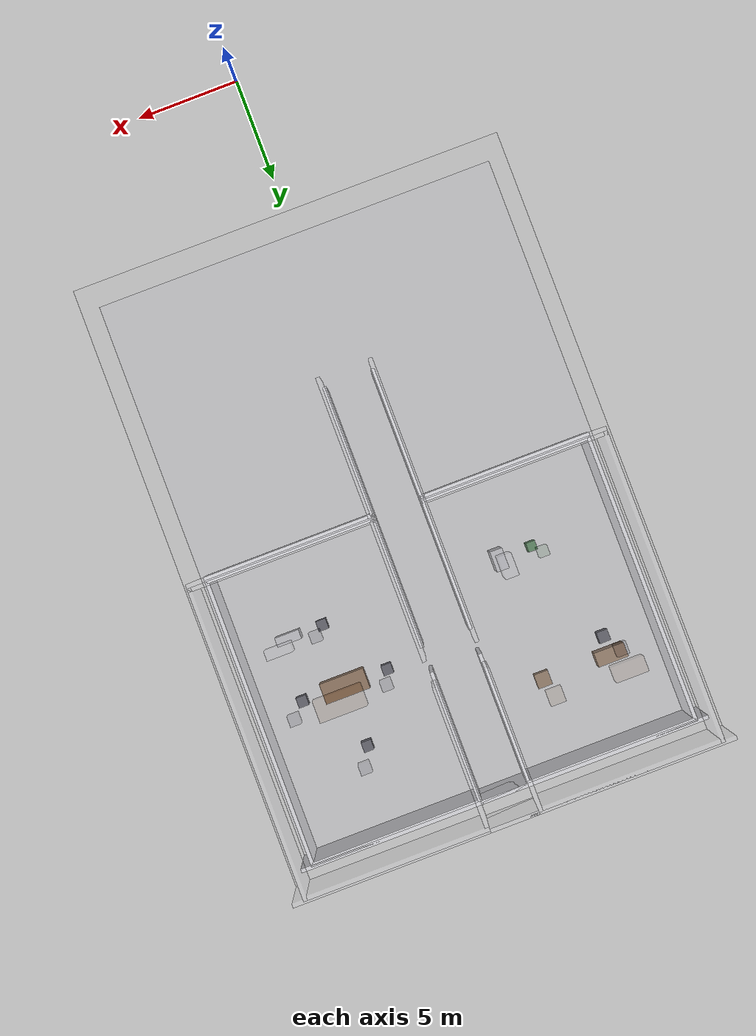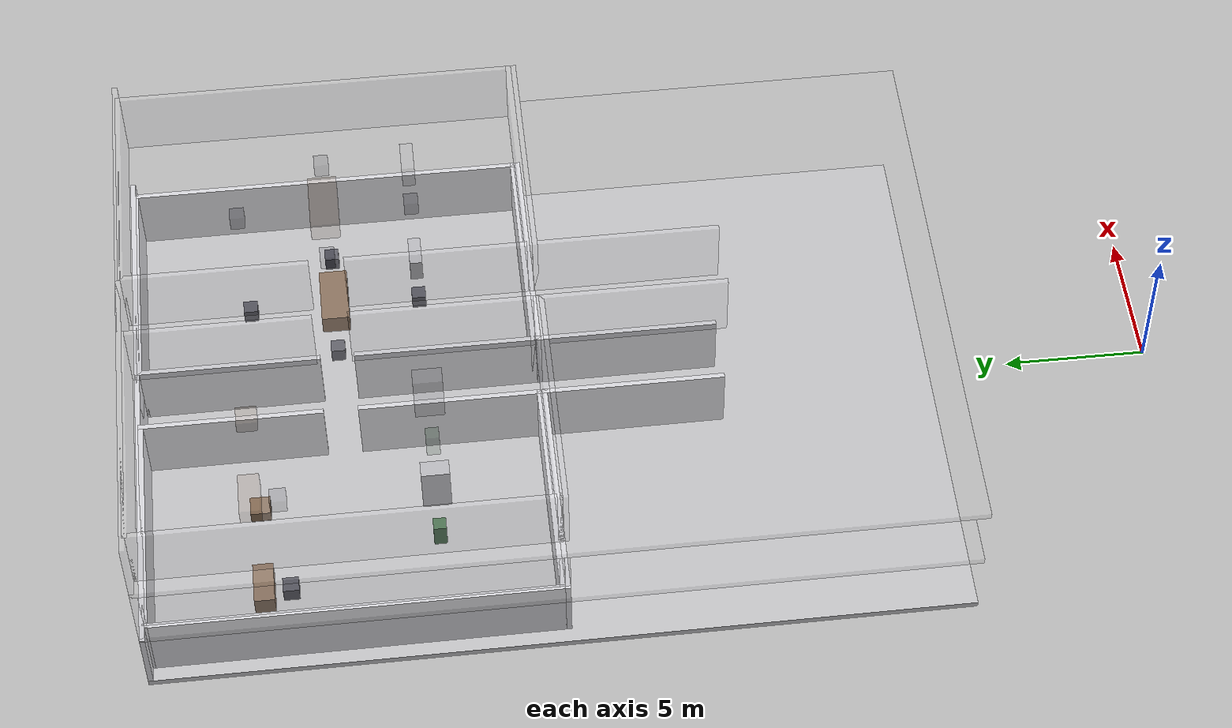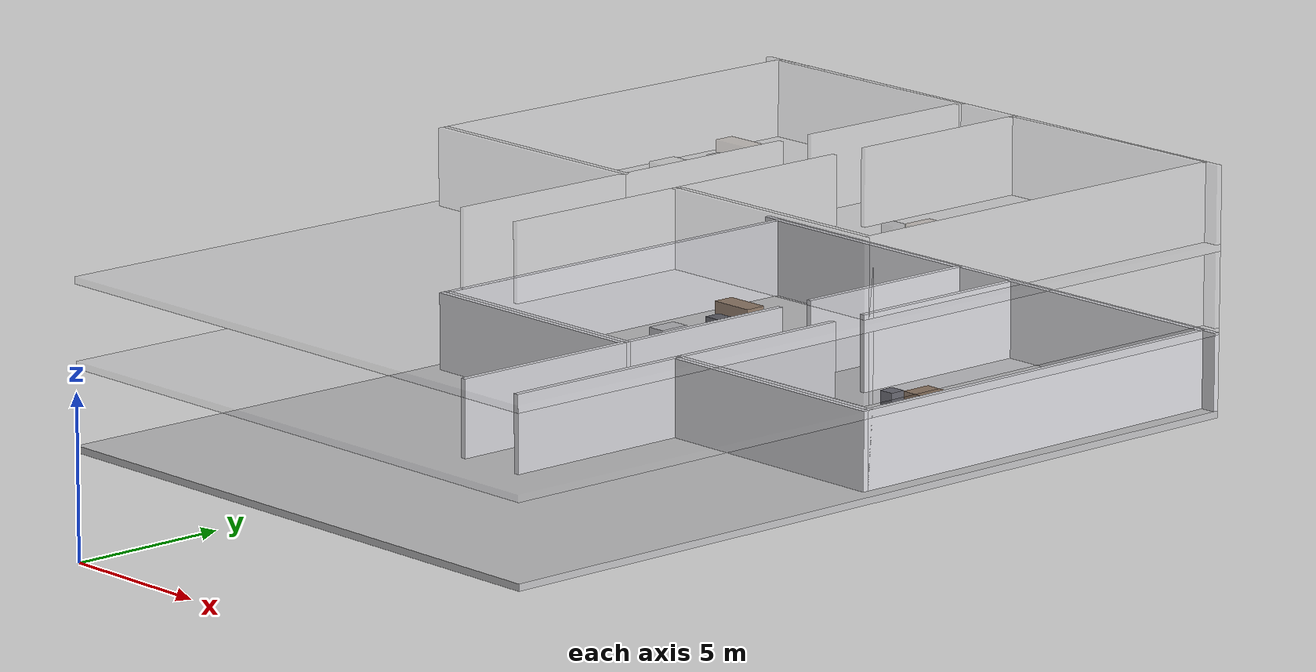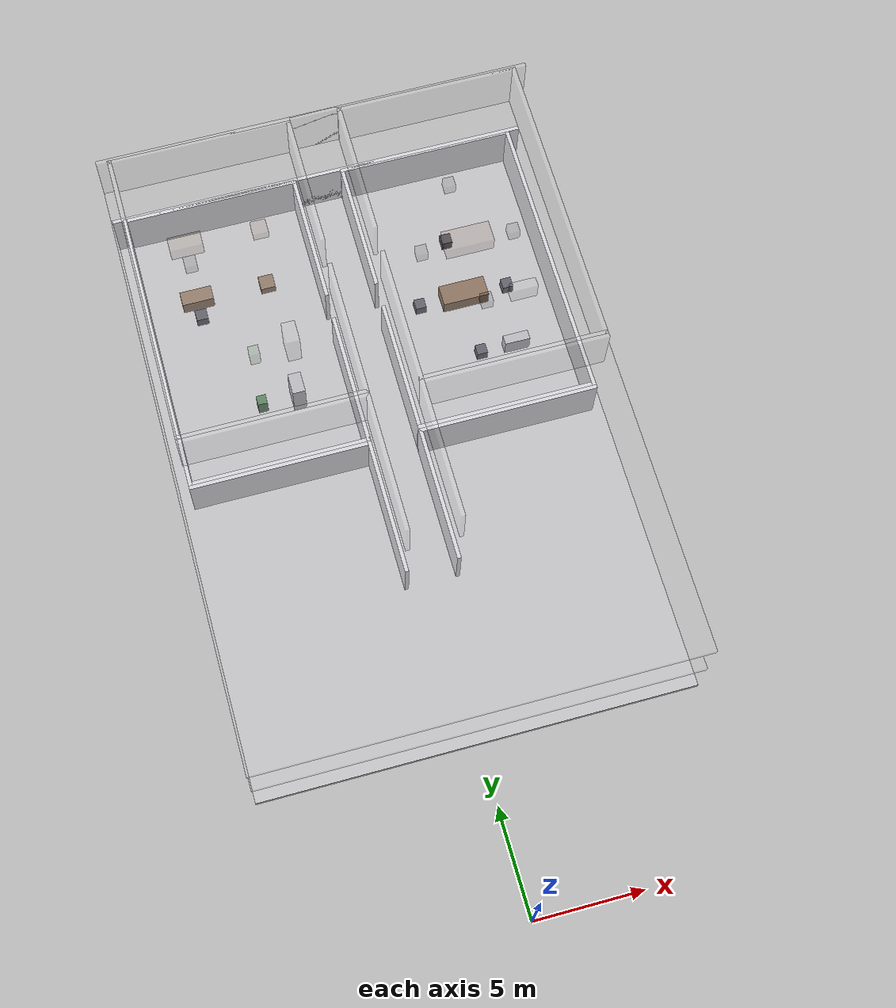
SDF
<sdf version="1.7">
 <model name="generated_building">
  <static>true</static>
  <link name="slab_floor_0_0">
   <pose>0.0000 21.9250 -0.1100 0.0000 0.0000 0.0000</pose>
   <collision name="slab_floor_0_0_collision">
    <geometry><box><size>20.0000 28.1500 0.2200</size></box></geometry>
   </collision>
   <visual name="slab_floor_0_0_visual">
    <geometry><box><size>20.0000 28.1500 0.2200</size></box></geometry>
    <material><ambient>0.76 0.76 0.77 1</ambient><diffuse>0.76 0.76 0.77 1</diffuse></material>
   </visual>
   <gravity>false</gravity>
  </link>
  <link name="exterior_north_floor_0">
   <pose>0.0000 35.9100 1.2250 0.0000 0.0000 0.0000</pose>
   <collision name="exterior_north_floor_0_collision">
    <geometry><box><size>20.0000 0.1800 2.4500</size></box></geometry>
   </collision>
   <visual name="exterior_north_floor_0_visual">
    <geometry><box><size>20.0000 0.1800 2.4500</size></box></geometry>
    <material><ambient>0.86 0.86 0.88 1</ambient><diffuse>0.86 0.86 0.88 1</diffuse></material>
   </visual>
   <gravity>false</gravity>
  </link>
  <link name="north_end_wall_floor_0">
   <pose>0.0000 35.9100 1.2250 0.0000 0.0000 0.0000</pose>
   <collision name="north_end_wall_floor_0_collision">
    <geometry><box><size>2.2000 0.1800 2.4500</size></box></geometry>
   </collision>
   <visual name="north_end_wall_floor_0_visual">
    <geometry><box><size>2.2000 0.1800 2.4500</size></box></geometry>
    <material><ambient>0.86 0.86 0.88 1</ambient><diffuse>0.86 0.86 0.88 1</diffuse></material>
   </visual>
   <gravity>false</gravity>
  </link>
  <link name="floor_0_room_0_corridor_wall_upper">
   <pose>-1.1900 18.6725 1.2250 0.0000 0.0000 0.0000</pose>
   <collision name="floor_0_room_0_corridor_wall_upper_collision">
    <geometry><box><size>0.1800 6.4150 2.4500</size></box></geometry>
   </collision>
   <visual name="floor_0_room_0_corridor_wall_upper_visual">
    <geometry><box><size>0.1800 6.4150 2.4500</size></box></geometry>
    <material><ambient>0.86 0.86 0.88 1</ambient><diffuse>0.86 0.86 0.88 1</diffuse></material>
   </visual>
   <gravity>false</gravity>
  </link>
  <link name="floor_0_room_0_north_wall">
   <pose>-5.3000 21.7900 1.2250 0.0000 0.0000 0.0000</pose>
   <collision name="floor_0_room_0_north_wall_collision">
    <geometry><box><size>8.4000 0.1800 2.4500</size></box></geometry>
   </collision>
   <visual name="floor_0_room_0_north_wall_visual">
    <geometry><box><size>8.4000 0.1800 2.4500</size></box></geometry>
    <material><ambient>0.86 0.86 0.88 1</ambient><diffuse>0.86 0.86 0.88 1</diffuse></material>
   </visual>
   <gravity>false</gravity>
  </link>
  <link name="floor_0_room_1_corridor_wall_upper">
   <pose>1.1900 18.6725 1.2250 0.0000 0.0000 0.0000</pose>
   <collision name="floor_0_room_1_corridor_wall_upper_collision">
    <geometry><box><size>0.1800 6.4150 2.4500</size></box></geometry>
   </collision>
   <visual name="floor_0_room_1_corridor_wall_upper_visual">
    <geometry><box><size>0.1800 6.4150 2.4500</size></box></geometry>
    <material><ambient>0.86 0.86 0.88 1</ambient><diffuse>0.86 0.86 0.88 1</diffuse></material>
   </visual>
   <gravity>false</gravity>
  </link>
  <link name="floor_0_room_1_north_wall">
   <pose>5.3000 21.7900 1.2250 0.0000 0.0000 0.0000</pose>
   <collision name="floor_0_room_1_north_wall_collision">
    <geometry><box><size>8.4000 0.1800 2.4500</size></box></geometry>
   </collision>
   <visual name="floor_0_room_1_north_wall_visual">
    <geometry><box><size>8.4000 0.1800 2.4500</size></box></geometry>
    <material><ambient>0.86 0.86 0.88 1</ambient><diffuse>0.86 0.86 0.88 1</diffuse></material>
   </visual>
   <gravity>false</gravity>
  </link>
  <link name="floor_0_room_2_corridor_wall_lower">
   <pose>-1.1900 25.0875 1.2250 0.0000 0.0000 0.0000</pose>
   <collision name="floor_0_room_2_corridor_wall_lower_collision">
    <geometry><box><size>0.1800 6.4150 2.4500</size></box></geometry>
   </collision>
   <visual name="floor_0_room_2_corridor_wall_lower_visual">
    <geometry><box><size>0.1800 6.4150 2.4500</size></box></geometry>
    <material><ambient>0.86 0.86 0.88 1</ambient><diffuse>0.86 0.86 0.88 1</diffuse></material>
   </visual>
   <gravity>false</gravity>
  </link>
  <link name="floor_0_room_2_corridor_wall_upper">
   <pose>-1.1900 32.7025 1.2250 0.0000 0.0000 0.0000</pose>
   <collision name="floor_0_room_2_corridor_wall_upper_collision">
    <geometry><box><size>0.1800 6.4150 2.4500</size></box></geometry>
   </collision>
   <visual name="floor_0_room_2_corridor_wall_upper_visual">
    <geometry><box><size>0.1800 6.4150 2.4500</size></box></geometry>
    <material><ambient>0.86 0.86 0.88 1</ambient><diffuse>0.86 0.86 0.88 1</diffuse></material>
   </visual>
   <gravity>false</gravity>
  </link>
  <link name="floor_0_room_2_west_wall">
   <pose>-9.4100 28.8950 1.2250 0.0000 0.0000 0.0000</pose>
   <collision name="floor_0_room_2_west_wall_collision">
    <geometry><box><size>0.1800 14.0300 2.4500</size></box></geometry>
   </collision>
   <visual name="floor_0_room_2_west_wall_visual">
    <geometry><box><size>0.1800 14.0300 2.4500</size></box></geometry>
    <material><ambient>0.86 0.86 0.88 1</ambient><diffuse>0.86 0.86 0.88 1</diffuse></material>
   </visual>
   <gravity>false</gravity>
  </link>
  <link name="floor_0_room_2_south_wall">
   <pose>-5.3000 21.9700 1.2250 0.0000 0.0000 0.0000</pose>
   <collision name="floor_0_room_2_south_wall_collision">
    <geometry><box><size>8.4000 0.1800 2.4500</size></box></geometry>
   </collision>
   <visual name="floor_0_room_2_south_wall_visual">
    <geometry><box><size>8.4000 0.1800 2.4500</size></box></geometry>
    <material><ambient>0.86 0.86 0.88 1</ambient><diffuse>0.86 0.86 0.88 1</diffuse></material>
   </visual>
   <gravity>false</gravity>
  </link>
  <link name="floor_0_room_2_north_wall">
   <pose>-5.3000 35.8200 1.2250 0.0000 0.0000 0.0000</pose>
   <collision name="floor_0_room_2_north_wall_collision">
    <geometry><box><size>8.4000 0.1800 2.4500</size></box></geometry>
   </collision>
   <visual name="floor_0_room_2_north_wall_visual">
    <geometry><box><size>8.4000 0.1800 2.4500</size></box></geometry>
    <material><ambient>0.86 0.86 0.88 1</ambient><diffuse>0.86 0.86 0.88 1</diffuse></material>
   </visual>
   <gravity>false</gravity>
  </link>
  <link name="floor_0_room_3_corridor_wall_lower">
   <pose>1.1900 25.0875 1.2250 0.0000 0.0000 0.0000</pose>
   <collision name="floor_0_room_3_corridor_wall_lower_collision">
    <geometry><box><size>0.1800 6.4150 2.4500</size></box></geometry>
   </collision>
   <visual name="floor_0_room_3_corridor_wall_lower_visual">
    <geometry><box><size>0.1800 6.4150 2.4500</size></box></geometry>
    <material><ambient>0.86 0.86 0.88 1</ambient><diffuse>0.86 0.86 0.88 1</diffuse></material>
   </visual>
   <gravity>false</gravity>
  </link>
  <link name="floor_0_room_3_corridor_wall_upper">
   <pose>1.1900 32.7025 1.2250 0.0000 0.0000 0.0000</pose>
   <collision name="floor_0_room_3_corridor_wall_upper_collision">
    <geometry><box><size>0.1800 6.4150 2.4500</size></box></geometry>
   </collision>
   <visual name="floor_0_room_3_corridor_wall_upper_visual">
    <geometry><box><size>0.1800 6.4150 2.4500</size></box></geometry>
    <material><ambient>0.86 0.86 0.88 1</ambient><diffuse>0.86 0.86 0.88 1</diffuse></material>
   </visual>
   <gravity>false</gravity>
  </link>
  <link name="floor_0_room_3_east_wall">
   <pose>9.4100 28.8950 1.2250 0.0000 0.0000 0.0000</pose>
   <collision name="floor_0_room_3_east_wall_collision">
    <geometry><box><size>0.1800 14.0300 2.4500</size></box></geometry>
   </collision>
   <visual name="floor_0_room_3_east_wall_visual">
    <geometry><box><size>0.1800 14.0300 2.4500</size></box></geometry>
    <material><ambient>0.86 0.86 0.88 1</ambient><diffuse>0.86 0.86 0.88 1</diffuse></material>
   </visual>
   <gravity>false</gravity>
  </link>
  <link name="floor_0_room_3_south_wall">
   <pose>5.3000 21.9700 1.2250 0.0000 0.0000 0.0000</pose>
   <collision name="floor_0_room_3_south_wall_collision">
    <geometry><box><size>8.4000 0.1800 2.4500</size></box></geometry>
   </collision>
   <visual name="floor_0_room_3_south_wall_visual">
    <geometry><box><size>8.4000 0.1800 2.4500</size></box></geometry>
    <material><ambient>0.86 0.86 0.88 1</ambient><diffuse>0.86 0.86 0.88 1</diffuse></material>
   </visual>
   <gravity>false</gravity>
  </link>
  <link name="floor_0_room_3_north_wall">
   <pose>5.3000 35.8200 1.2250 0.0000 0.0000 0.0000</pose>
   <collision name="floor_0_room_3_north_wall_collision">
    <geometry><box><size>8.4000 0.1800 2.4500</size></box></geometry>
   </collision>
   <visual name="floor_0_room_3_north_wall_visual">
    <geometry><box><size>8.4000 0.1800 2.4500</size></box></geometry>
    <material><ambient>0.86 0.86 0.88 1</ambient><diffuse>0.86 0.86 0.88 1</diffuse></material>
   </visual>
   <gravity>false</gravity>
  </link>
  <link name="floor_0_room_2_desk">
   <pose>-7.0000 31.9525 0.4500 0.0000 0.0000 0.0000</pose>
   <collision name="floor_0_room_2_desk_collision">
    <geometry><box><size>1.5000 0.7000 0.7500</size></box></geometry>
   </collision>
   <visual name="floor_0_room_2_desk_visual">
    <geometry><box><size>1.5000 0.7000 0.7500</size></box></geometry>
    <material><ambient>0.54 0.43 0.34 1</ambient><diffuse>0.54 0.43 0.34 1</diffuse></material>
   </visual>
   <gravity>false</gravity>
  </link>
  <link name="floor_0_room_2_chair">
   <pose>-7.0000 31.0525 0.2800 0.0000 0.0000 0.0000</pose>
   <collision name="floor_0_room_2_chair_collision">
    <geometry><box><size>0.5500 0.5500 0.5500</size></box></geometry>
   </collision>
   <visual name="floor_0_room_2_chair_visual">
    <geometry><box><size>0.5500 0.5500 0.5500</size></box></geometry>
    <material><ambient>0.30 0.30 0.34 1</ambient><diffuse>0.30 0.30 0.34 1</diffuse></material>
   </visual>
   <gravity>false</gravity>
  </link>
  <link name="floor_0_room_2_cabinet">
   <pose>-3.6000 25.8375 0.9000 0.0000 0.0000 0.0000</pose>
   <collision name="floor_0_room_2_cabinet_collision">
    <geometry><box><size>0.6000 1.0000 1.8000</size></box></geometry>
   </collision>
   <visual name="floor_0_room_2_cabinet_visual">
    <geometry><box><size>0.6000 1.0000 1.8000</size></box></geometry>
    <material><ambient>0.72 0.72 0.74 1</ambient><diffuse>0.72 0.72 0.74 1</diffuse></material>
   </visual>
   <gravity>false</gravity>
  </link>
  <link name="floor_0_room_2_side_table">
   <pose>-3.6000 31.9525 0.3200 0.0000 0.0000 0.0000</pose>
   <collision name="floor_0_room_2_side_table_collision">
    <geometry><box><size>0.7000 0.7000 0.4500</size></box></geometry>
   </collision>
   <visual name="floor_0_room_2_side_table_visual">
    <geometry><box><size>0.7000 0.7000 0.4500</size></box></geometry>
    <material><ambient>0.52 0.42 0.33 1</ambient><diffuse>0.52 0.42 0.33 1</diffuse></material>
   </visual>
   <gravity>false</gravity>
  </link>
  <link name="floor_0_room_2_planter">
   <pose>-5.3000 25.8375 0.4500 0.0000 0.0000 0.0000</pose>
   <collision name="floor_0_room_2_planter_collision">
    <geometry><box><size>0.4500 0.4500 0.9000</size></box></geometry>
   </collision>
   <visual name="floor_0_room_2_planter_visual">
    <geometry><box><size>0.4500 0.4500 0.9000</size></box></geometry>
    <material><ambient>0.28 0.46 0.30 1</ambient><diffuse>0.28 0.46 0.30 1</diffuse></material>
   </visual>
   <gravity>false</gravity>
  </link>
  <link name="floor_0_room_3_table">
   <pose>5.3000 28.8950 0.4500 0.0000 0.0000 0.0000</pose>
   <collision name="floor_0_room_3_table_collision">
    <geometry><box><size>2.2000 1.0000 0.7500</size></box></geometry>
   </collision>
   <visual name="floor_0_room_3_table_visual">
    <geometry><box><size>2.2000 1.0000 0.7500</size></box></geometry>
    <material><ambient>0.50 0.38 0.28 1</ambient><diffuse>0.50 0.38 0.28 1</diffuse></material>
   </visual>
   <gravity>false</gravity>
  </link>
  <link name="floor_0_room_3_chair_north">
   <pose>5.3000 31.9525 0.2800 0.0000 0.0000 0.0000</pose>
   <collision name="floor_0_room_3_chair_north_collision">
    <geometry><box><size>0.5000 0.5000 0.5500</size></box></geometry>
   </collision>
   <visual name="floor_0_room_3_chair_north_visual">
    <geometry><box><size>0.5000 0.5000 0.5500</size></box></geometry>
    <material><ambient>0.30 0.30 0.34 1</ambient><diffuse>0.30 0.30 0.34 1</diffuse></material>
   </visual>
   <gravity>false</gravity>
  </link>
  <link name="floor_0_room_3_chair_south">
   <pose>5.3000 25.8375 0.2800 0.0000 0.0000 0.0000</pose>
   <collision name="floor_0_room_3_chair_south_collision">
    <geometry><box><size>0.5000 0.5000 0.5500</size></box></geometry>
   </collision>
   <visual name="floor_0_room_3_chair_south_visual">
    <geometry><box><size>0.5000 0.5000 0.5500</size></box></geometry>
    <material><ambient>0.30 0.30 0.34 1</ambient><diffuse>0.30 0.30 0.34 1</diffuse></material>
   </visual>
   <gravity>false</gravity>
  </link>
  <link name="floor_0_room_3_chair_west">
   <pose>3.1500 28.8950 0.2800 0.0000 0.0000 1.5700</pose>
   <collision name="floor_0_room_3_chair_west_collision">
    <geometry><box><size>0.5000 0.5000 0.5500</size></box></geometry>
   </collision>
   <visual name="floor_0_room_3_chair_west_visual">
    <geometry><box><size>0.5000 0.5000 0.5500</size></box></geometry>
    <material><ambient>0.30 0.30 0.34 1</ambient><diffuse>0.30 0.30 0.34 1</diffuse></material>
   </visual>
   <gravity>false</gravity>
  </link>
  <link name="floor_0_room_3_chair_east">
   <pose>7.4500 28.8950 0.2800 0.0000 0.0000 1.5700</pose>
   <collision name="floor_0_room_3_chair_east_collision">
    <geometry><box><size>0.5000 0.5000 0.5500</size></box></geometry>
   </collision>
   <visual name="floor_0_room_3_chair_east_visual">
    <geometry><box><size>0.5000 0.5000 0.5500</size></box></geometry>
    <material><ambient>0.30 0.30 0.34 1</ambient><diffuse>0.30 0.30 0.34 1</diffuse></material>
   </visual>
   <gravity>false</gravity>
  </link>
  <link name="floor_0_room_3_credenza">
   <pose>7.0000 25.8375 0.4500 0.0000 0.0000 0.0000</pose>
   <collision name="floor_0_room_3_credenza_collision">
    <geometry><box><size>1.2000 0.4500 0.9000</size></box></geometry>
   </collision>
   <visual name="floor_0_room_3_credenza_visual">
    <geometry><box><size>1.2000 0.4500 0.9000</size></box></geometry>
    <material><ambient>0.72 0.72 0.74 1</ambient><diffuse>0.72 0.72 0.74 1</diffuse></material>
   </visual>
   <gravity>false</gravity>
  </link>
  <link name="slab_floor_1_0">
   <pose>0.0000 21.9250 2.4900 0.0000 0.0000 0.0000</pose>
   <collision name="slab_floor_1_0_collision">
    <geometry><box><size>20.0000 28.1500 0.2200</size></box></geometry>
   </collision>
   <visual name="slab_floor_1_0_visual">
    <geometry><box><size>20.0000 28.1500 0.2200</size></box></geometry>
    <material><ambient>0.76 0.76 0.77 1</ambient><diffuse>0.76 0.76 0.77 1</diffuse></material>
    <transparency>0.80</transparency>
   </visual>
   <gravity>false</gravity>
  </link>
  <link name="exterior_north_floor_1">
   <pose>0.0000 35.9100 3.8250 0.0000 0.0000 0.0000</pose>
   <collision name="exterior_north_floor_1_collision">
    <geometry><box><size>20.0000 0.1800 2.4500</size></box></geometry>
   </collision>
   <visual name="exterior_north_floor_1_visual">
    <geometry><box><size>20.0000 0.1800 2.4500</size></box></geometry>
    <material><ambient>0.86 0.86 0.88 1</ambient><diffuse>0.86 0.86 0.88 1</diffuse></material>
    <transparency>0.80</transparency>
   </visual>
   <gravity>false</gravity>
  </link>
  <link name="north_end_wall_floor_1">
   <pose>0.0000 35.9100 3.8250 0.0000 0.0000 0.0000</pose>
   <collision name="north_end_wall_floor_1_collision">
    <geometry><box><size>2.2000 0.1800 2.4500</size></box></geometry>
   </collision>
   <visual name="north_end_wall_floor_1_visual">
    <geometry><box><size>2.2000 0.1800 2.4500</size></box></geometry>
    <material><ambient>0.86 0.86 0.88 1</ambient><diffuse>0.86 0.86 0.88 1</diffuse></material>
    <transparency>0.80</transparency>
   </visual>
   <gravity>false</gravity>
  </link>
  <link name="floor_1_room_0_corridor_wall_upper">
   <pose>-1.1900 18.6725 3.8250 0.0000 0.0000 0.0000</pose>
   <collision name="floor_1_room_0_corridor_wall_upper_collision">
    <geometry><box><size>0.1800 6.4150 2.4500</size></box></geometry>
   </collision>
   <visual name="floor_1_room_0_corridor_wall_upper_visual">
    <geometry><box><size>0.1800 6.4150 2.4500</size></box></geometry>
    <material><ambient>0.86 0.86 0.88 1</ambient><diffuse>0.86 0.86 0.88 1</diffuse></material>
    <transparency>0.80</transparency>
   </visual>
   <gravity>false</gravity>
  </link>
  <link name="floor_1_room_0_north_wall">
   <pose>-5.3000 21.7900 3.8250 0.0000 0.0000 0.0000</pose>
   <collision name="floor_1_room_0_north_wall_collision">
    <geometry><box><size>8.4000 0.1800 2.4500</size></box></geometry>
   </collision>
   <visual name="floor_1_room_0_north_wall_visual">
    <geometry><box><size>8.4000 0.1800 2.4500</size></box></geometry>
    <material><ambient>0.86 0.86 0.88 1</ambient><diffuse>0.86 0.86 0.88 1</diffuse></material>
    <transparency>0.80</transparency>
   </visual>
   <gravity>false</gravity>
  </link>
  <link name="floor_1_room_1_corridor_wall_upper">
   <pose>1.1900 18.6725 3.8250 0.0000 0.0000 0.0000</pose>
   <collision name="floor_1_room_1_corridor_wall_upper_collision">
    <geometry><box><size>0.1800 6.4150 2.4500</size></box></geometry>
   </collision>
   <visual name="floor_1_room_1_corridor_wall_upper_visual">
    <geometry><box><size>0.1800 6.4150 2.4500</size></box></geometry>
    <material><ambient>0.86 0.86 0.88 1</ambient><diffuse>0.86 0.86 0.88 1</diffuse></material>
    <transparency>0.80</transparency>
   </visual>
   <gravity>false</gravity>
  </link>
  <link name="floor_1_room_1_north_wall">
   <pose>5.3000 21.7900 3.8250 0.0000 0.0000 0.0000</pose>
   <collision name="floor_1_room_1_north_wall_collision">
    <geometry><box><size>8.4000 0.1800 2.4500</size></box></geometry>
   </collision>
   <visual name="floor_1_room_1_north_wall_visual">
    <geometry><box><size>8.4000 0.1800 2.4500</size></box></geometry>
    <material><ambient>0.86 0.86 0.88 1</ambient><diffuse>0.86 0.86 0.88 1</diffuse></material>
    <transparency>0.80</transparency>
   </visual>
   <gravity>false</gravity>
  </link>
  <link name="floor_1_room_2_corridor_wall_lower">
   <pose>-1.1900 25.0875 3.8250 0.0000 0.0000 0.0000</pose>
   <collision name="floor_1_room_2_corridor_wall_lower_collision">
    <geometry><box><size>0.1800 6.4150 2.4500</size></box></geometry>
   </collision>
   <visual name="floor_1_room_2_corridor_wall_lower_visual">
    <geometry><box><size>0.1800 6.4150 2.4500</size></box></geometry>
    <material><ambient>0.86 0.86 0.88 1</ambient><diffuse>0.86 0.86 0.88 1</diffuse></material>
    <transparency>0.80</transparency>
   </visual>
   <gravity>false</gravity>
  </link>
  <link name="floor_1_room_2_corridor_wall_upper">
   <pose>-1.1900 32.7025 3.8250 0.0000 0.0000 0.0000</pose>
   <collision name="floor_1_room_2_corridor_wall_upper_collision">
    <geometry><box><size>0.1800 6.4150 2.4500</size></box></geometry>
   </collision>
   <visual name="floor_1_room_2_corridor_wall_upper_visual">
    <geometry><box><size>0.1800 6.4150 2.4500</size></box></geometry>
    <material><ambient>0.86 0.86 0.88 1</ambient><diffuse>0.86 0.86 0.88 1</diffuse></material>
    <transparency>0.80</transparency>
   </visual>
   <gravity>false</gravity>
  </link>
  <link name="floor_1_room_2_west_wall">
   <pose>-9.4100 28.8950 3.8250 0.0000 0.0000 0.0000</pose>
   <collision name="floor_1_room_2_west_wall_collision">
    <geometry><box><size>0.1800 14.0300 2.4500</size></box></geometry>
   </collision>
   <visual name="floor_1_room_2_west_wall_visual">
    <geometry><box><size>0.1800 14.0300 2.4500</size></box></geometry>
    <material><ambient>0.86 0.86 0.88 1</ambient><diffuse>0.86 0.86 0.88 1</diffuse></material>
    <transparency>0.80</transparency>
   </visual>
   <gravity>false</gravity>
  </link>
  <link name="floor_1_room_2_south_wall">
   <pose>-5.3000 21.9700 3.8250 0.0000 0.0000 0.0000</pose>
   <collision name="floor_1_room_2_south_wall_collision">
    <geometry><box><size>8.4000 0.1800 2.4500</size></box></geometry>
   </collision>
   <visual name="floor_1_room_2_south_wall_visual">
    <geometry><box><size>8.4000 0.1800 2.4500</size></box></geometry>
    <material><ambient>0.86 0.86 0.88 1</ambient><diffuse>0.86 0.86 0.88 1</diffuse></material>
    <transparency>0.80</transparency>
   </visual>
   <gravity>false</gravity>
  </link>
  <link name="floor_1_room_2_north_wall">
   <pose>-5.3000 35.8200 3.8250 0.0000 0.0000 0.0000</pose>
   <collision name="floor_1_room_2_north_wall_collision">
    <geometry><box><size>8.4000 0.1800 2.4500</size></box></geometry>
   </collision>
   <visual name="floor_1_room_2_north_wall_visual">
    <geometry><box><size>8.4000 0.1800 2.4500</size></box></geometry>
    <material><ambient>0.86 0.86 0.88 1</ambient><diffuse>0.86 0.86 0.88 1</diffuse></material>
    <transparency>0.80</transparency>
   </visual>
   <gravity>false</gravity>
  </link>
  <link name="floor_1_room_3_corridor_wall_lower">
   <pose>1.1900 25.0875 3.8250 0.0000 0.0000 0.0000</pose>
   <collision name="floor_1_room_3_corridor_wall_lower_collision">
    <geometry><box><size>0.1800 6.4150 2.4500</size></box></geometry>
   </collision>
   <visual name="floor_1_room_3_corridor_wall_lower_visual">
    <geometry><box><size>0.1800 6.4150 2.4500</size></box></geometry>
    <material><ambient>0.86 0.86 0.88 1</ambient><diffuse>0.86 0.86 0.88 1</diffuse></material>
    <transparency>0.80</transparency>
   </visual>
   <gravity>false</gravity>
  </link>
  <link name="floor_1_room_3_corridor_wall_upper">
   <pose>1.1900 32.7025 3.8250 0.0000 0.0000 0.0000</pose>
   <collision name="floor_1_room_3_corridor_wall_upper_collision">
    <geometry><box><size>0.1800 6.4150 2.4500</size></box></geometry>
   </collision>
   <visual name="floor_1_room_3_corridor_wall_upper_visual">
    <geometry><box><size>0.1800 6.4150 2.4500</size></box></geometry>
    <material><ambient>0.86 0.86 0.88 1</ambient><diffuse>0.86 0.86 0.88 1</diffuse></material>
    <transparency>0.80</transparency>
   </visual>
   <gravity>false</gravity>
  </link>
  <link name="floor_1_room_3_east_wall">
   <pose>9.4100 28.8950 3.8250 0.0000 0.0000 0.0000</pose>
   <collision name="floor_1_room_3_east_wall_collision">
    <geometry><box><size>0.1800 14.0300 2.4500</size></box></geometry>
   </collision>
   <visual name="floor_1_room_3_east_wall_visual">
    <geometry><box><size>0.1800 14.0300 2.4500</size></box></geometry>
    <material><ambient>0.86 0.86 0.88 1</ambient><diffuse>0.86 0.86 0.88 1</diffuse></material>
    <transparency>0.80</transparency>
   </visual>
   <gravity>false</gravity>
  </link>
  <link name="floor_1_room_3_south_wall">
   <pose>5.3000 21.9700 3.8250 0.0000 0.0000 0.0000</pose>
   <collision name="floor_1_room_3_south_wall_collision">
    <geometry><box><size>8.4000 0.1800 2.4500</size></box></geometry>
   </collision>
   <visual name="floor_1_room_3_south_wall_visual">
    <geometry><box><size>8.4000 0.1800 2.4500</size></box></geometry>
    <material><ambient>0.86 0.86 0.88 1</ambient><diffuse>0.86 0.86 0.88 1</diffuse></material>
    <transparency>0.80</transparency>
   </visual>
   <gravity>false</gravity>
  </link>
  <link name="floor_1_room_3_north_wall">
   <pose>5.3000 35.8200 3.8250 0.0000 0.0000 0.0000</pose>
   <collision name="floor_1_room_3_north_wall_collision">
    <geometry><box><size>8.4000 0.1800 2.4500</size></box></geometry>
   </collision>
   <visual name="floor_1_room_3_north_wall_visual">
    <geometry><box><size>8.4000 0.1800 2.4500</size></box></geometry>
    <material><ambient>0.86 0.86 0.88 1</ambient><diffuse>0.86 0.86 0.88 1</diffuse></material>
    <transparency>0.80</transparency>
   </visual>
   <gravity>false</gravity>
  </link>
  <link name="floor_1_room_2_sofa_a">
   <pose>-7.0000 25.8375 3.0500 0.0000 0.0000 0.0000</pose>
   <collision name="floor_1_room_2_sofa_a_collision">
    <geometry><box><size>1.8000 0.8000 0.8000</size></box></geometry>
   </collision>
   <visual name="floor_1_room_2_sofa_a_visual">
    <geometry><box><size>1.8000 0.8000 0.8000</size></box></geometry>
    <material><ambient>0.24 0.36 0.54 1</ambient><diffuse>0.24 0.36 0.54 1</diffuse></material>
    <transparency>0.80</transparency>
   </visual>
   <gravity>false</gravity>
  </link>
  <link name="floor_1_room_2_sofa_b">
   <pose>-3.6000 25.8375 3.0500 0.0000 0.0000 3.1400</pose>
   <collision name="floor_1_room_2_sofa_b_collision">
    <geometry><box><size>1.8000 0.8000 0.8000</size></box></geometry>
   </collision>
   <visual name="floor_1_room_2_sofa_b_visual">
    <geometry><box><size>1.8000 0.8000 0.8000</size></box></geometry>
    <material><ambient>0.24 0.36 0.54 1</ambient><diffuse>0.24 0.36 0.54 1</diffuse></material>
    <transparency>0.80</transparency>
   </visual>
   <gravity>false</gravity>
  </link>
  <link name="floor_1_room_2_coffee_table">
   <pose>-5.3000 28.8950 2.8500 0.0000 0.0000 0.0000</pose>
   <collision name="floor_1_room_2_coffee_table_collision">
    <geometry><box><size>0.8000 0.6000 0.4000</size></box></geometry>
   </collision>
   <visual name="floor_1_room_2_coffee_table_visual">
    <geometry><box><size>0.8000 0.6000 0.4000</size></box></geometry>
    <material><ambient>0.60 0.48 0.34 1</ambient><diffuse>0.60 0.48 0.34 1</diffuse></material>
    <transparency>0.80</transparency>
   </visual>
   <gravity>false</gravity>
  </link>
  <link name="floor_1_room_2_bookshelf">
   <pose>-3.6000 31.9525 3.4500 0.0000 0.0000 0.0000</pose>
   <collision name="floor_1_room_2_bookshelf_collision">
    <geometry><box><size>0.4500 1.2000 1.7000</size></box></geometry>
   </collision>
   <visual name="floor_1_room_2_bookshelf_visual">
    <geometry><box><size>0.4500 1.2000 1.7000</size></box></geometry>
    <material><ambient>0.50 0.40 0.30 1</ambient><diffuse>0.50 0.40 0.30 1</diffuse></material>
    <transparency>0.80</transparency>
   </visual>
   <gravity>false</gravity>
  </link>
  <link name="floor_1_room_2_planter">
   <pose>-7.0000 31.9525 3.0500 0.0000 0.0000 0.0000</pose>
   <collision name="floor_1_room_2_planter_collision">
    <geometry><box><size>0.4500 0.4500 0.9000</size></box></geometry>
   </collision>
   <visual name="floor_1_room_2_planter_visual">
    <geometry><box><size>0.4500 0.4500 0.9000</size></box></geometry>
    <material><ambient>0.28 0.46 0.30 1</ambient><diffuse>0.28 0.46 0.30 1</diffuse></material>
    <transparency>0.80</transparency>
   </visual>
   <gravity>false</gravity>
  </link>
  <link name="floor_1_room_3_desk">
   <pose>3.6000 31.9525 3.0500 0.0000 0.0000 0.0000</pose>
   <collision name="floor_1_room_3_desk_collision">
    <geometry><box><size>1.5000 0.7000 0.7500</size></box></geometry>
   </collision>
   <visual name="floor_1_room_3_desk_visual">
    <geometry><box><size>1.5000 0.7000 0.7500</size></box></geometry>
    <material><ambient>0.54 0.43 0.34 1</ambient><diffuse>0.54 0.43 0.34 1</diffuse></material>
    <transparency>0.80</transparency>
   </visual>
   <gravity>false</gravity>
  </link>
  <link name="floor_1_room_3_chair">
   <pose>3.6000 31.0525 2.8800 0.0000 0.0000 0.0000</pose>
   <collision name="floor_1_room_3_chair_collision">
    <geometry><box><size>0.5500 0.5500 0.5500</size></box></geometry>
   </collision>
   <visual name="floor_1_room_3_chair_visual">
    <geometry><box><size>0.5500 0.5500 0.5500</size></box></geometry>
    <material><ambient>0.30 0.30 0.34 1</ambient><diffuse>0.30 0.30 0.34 1</diffuse></material>
    <transparency>0.80</transparency>
   </visual>
   <gravity>false</gravity>
  </link>
  <link name="floor_1_room_3_cabinet">
   <pose>7.0000 25.8375 3.5000 0.0000 0.0000 0.0000</pose>
   <collision name="floor_1_room_3_cabinet_collision">
    <geometry><box><size>0.6000 1.0000 1.8000</size></box></geometry>
   </collision>
   <visual name="floor_1_room_3_cabinet_visual">
    <geometry><box><size>0.6000 1.0000 1.8000</size></box></geometry>
    <material><ambient>0.72 0.72 0.74 1</ambient><diffuse>0.72 0.72 0.74 1</diffuse></material>
    <transparency>0.80</transparency>
   </visual>
   <gravity>false</gravity>
  </link>
  <link name="floor_1_room_3_side_table">
   <pose>7.0000 31.9525 2.9200 0.0000 0.0000 0.0000</pose>
   <collision name="floor_1_room_3_side_table_collision">
    <geometry><box><size>0.7000 0.7000 0.4500</size></box></geometry>
   </collision>
   <visual name="floor_1_room_3_side_table_visual">
    <geometry><box><size>0.7000 0.7000 0.4500</size></box></geometry>
    <material><ambient>0.52 0.42 0.33 1</ambient><diffuse>0.52 0.42 0.33 1</diffuse></material>
    <transparency>0.80</transparency>
   </visual>
   <gravity>false</gravity>
  </link>
  <link name="floor_1_room_3_planter">
   <pose>5.3000 25.8375 3.0500 0.0000 0.0000 0.0000</pose>
   <collision name="floor_1_room_3_planter_collision">
    <geometry><box><size>0.4500 0.4500 0.9000</size></box></geometry>
   </collision>
   <visual name="floor_1_room_3_planter_visual">
    <geometry><box><size>0.4500 0.4500 0.9000</size></box></geometry>
    <material><ambient>0.28 0.46 0.30 1</ambient><diffuse>0.28 0.46 0.30 1</diffuse></material>
    <transparency>0.80</transparency>
   </visual>
   <gravity>false</gravity>
  </link>
  <link name="slab_floor_2_0">
   <pose>0.0000 21.9250 5.0900 0.0000 0.0000 0.0000</pose>
   <collision name="slab_floor_2_0_collision">
    <geometry><box><size>20.0000 28.1500 0.2200</size></box></geometry>
   </collision>
   <visual name="slab_floor_2_0_visual">
    <geometry><box><size>20.0000 28.1500 0.2200</size></box></geometry>
    <material><ambient>0.76 0.76 0.77 1</ambient><diffuse>0.76 0.76 0.77 1</diffuse></material>
    <transparency>0.80</transparency>
   </visual>
   <gravity>false</gravity>
  </link>
  <link name="exterior_north_floor_2">
   <pose>0.0000 35.9100 6.4250 0.0000 0.0000 0.0000</pose>
   <collision name="exterior_north_floor_2_collision">
    <geometry><box><size>20.0000 0.1800 2.4500</size></box></geometry>
   </collision>
   <visual name="exterior_north_floor_2_visual">
    <geometry><box><size>20.0000 0.1800 2.4500</size></box></geometry>
    <material><ambient>0.86 0.86 0.88 1</ambient><diffuse>0.86 0.86 0.88 1</diffuse></material>
    <transparency>0.80</transparency>
   </visual>
   <gravity>false</gravity>
  </link>
  <link name="north_end_wall_floor_2">
   <pose>0.0000 35.9100 6.4250 0.0000 0.0000 0.0000</pose>
   <collision name="north_end_wall_floor_2_collision">
    <geometry><box><size>2.2000 0.1800 2.4500</size></box></geometry>
   </collision>
   <visual name="north_end_wall_floor_2_visual">
    <geometry><box><size>2.2000 0.1800 2.4500</size></box></geometry>
    <material><ambient>0.86 0.86 0.88 1</ambient><diffuse>0.86 0.86 0.88 1</diffuse></material>
    <transparency>0.80</transparency>
   </visual>
   <gravity>false</gravity>
  </link>
  <link name="floor_2_room_0_corridor_wall_upper">
   <pose>-1.1900 18.6725 6.4250 0.0000 0.0000 0.0000</pose>
   <collision name="floor_2_room_0_corridor_wall_upper_collision">
    <geometry><box><size>0.1800 6.4150 2.4500</size></box></geometry>
   </collision>
   <visual name="floor_2_room_0_corridor_wall_upper_visual">
    <geometry><box><size>0.1800 6.4150 2.4500</size></box></geometry>
    <material><ambient>0.86 0.86 0.88 1</ambient><diffuse>0.86 0.86 0.88 1</diffuse></material>
    <transparency>0.80</transparency>
   </visual>
   <gravity>false</gravity>
  </link>
  <link name="floor_2_room_0_north_wall">
   <pose>-5.3000 21.7900 6.4250 0.0000 0.0000 0.0000</pose>
   <collision name="floor_2_room_0_north_wall_collision">
    <geometry><box><size>8.4000 0.1800 2.4500</size></box></geometry>
   </collision>
   <visual name="floor_2_room_0_north_wall_visual">
    <geometry><box><size>8.4000 0.1800 2.4500</size></box></geometry>
    <material><ambient>0.86 0.86 0.88 1</ambient><diffuse>0.86 0.86 0.88 1</diffuse></material>
    <transparency>0.80</transparency>
   </visual>
   <gravity>false</gravity>
  </link>
  <link name="floor_2_room_1_corridor_wall_upper">
   <pose>1.1900 18.6725 6.4250 0.0000 0.0000 0.0000</pose>
   <collision name="floor_2_room_1_corridor_wall_upper_collision">
    <geometry><box><size>0.1800 6.4150 2.4500</size></box></geometry>
   </collision>
   <visual name="floor_2_room_1_corridor_wall_upper_visual">
    <geometry><box><size>0.1800 6.4150 2.4500</size></box></geometry>
    <material><ambient>0.86 0.86 0.88 1</ambient><diffuse>0.86 0.86 0.88 1</diffuse></material>
    <transparency>0.80</transparency>
   </visual>
   <gravity>false</gravity>
  </link>
  <link name="floor_2_room_1_north_wall">
   <pose>5.3000 21.7900 6.4250 0.0000 0.0000 0.0000</pose>
   <collision name="floor_2_room_1_north_wall_collision">
    <geometry><box><size>8.4000 0.1800 2.4500</size></box></geometry>
   </collision>
   <visual name="floor_2_room_1_north_wall_visual">
    <geometry><box><size>8.4000 0.1800 2.4500</size></box></geometry>
    <material><ambient>0.86 0.86 0.88 1</ambient><diffuse>0.86 0.86 0.88 1</diffuse></material>
    <transparency>0.80</transparency>
   </visual>
   <gravity>false</gravity>
  </link>
  <link name="floor_2_room_2_corridor_wall_lower">
   <pose>-1.1900 25.0875 6.4250 0.0000 0.0000 0.0000</pose>
   <collision name="floor_2_room_2_corridor_wall_lower_collision">
    <geometry><box><size>0.1800 6.4150 2.4500</size></box></geometry>
   </collision>
   <visual name="floor_2_room_2_corridor_wall_lower_visual">
    <geometry><box><size>0.1800 6.4150 2.4500</size></box></geometry>
    <material><ambient>0.86 0.86 0.88 1</ambient><diffuse>0.86 0.86 0.88 1</diffuse></material>
    <transparency>0.80</transparency>
   </visual>
   <gravity>false</gravity>
  </link>
  <link name="floor_2_room_2_corridor_wall_upper">
   <pose>-1.1900 32.7025 6.4250 0.0000 0.0000 0.0000</pose>
   <collision name="floor_2_room_2_corridor_wall_upper_collision">
    <geometry><box><size>0.1800 6.4150 2.4500</size></box></geometry>
   </collision>
   <visual name="floor_2_room_2_corridor_wall_upper_visual">
    <geometry><box><size>0.1800 6.4150 2.4500</size></box></geometry>
    <material><ambient>0.86 0.86 0.88 1</ambient><diffuse>0.86 0.86 0.88 1</diffuse></material>
    <transparency>0.80</transparency>
   </visual>
   <gravity>false</gravity>
  </link>
  <link name="floor_2_room_2_west_wall">
   <pose>-9.4100 28.8950 6.4250 0.0000 0.0000 0.0000</pose>
   <collision name="floor_2_room_2_west_wall_collision">
    <geometry><box><size>0.1800 14.0300 2.4500</size></box></geometry>
   </collision>
   <visual name="floor_2_room_2_west_wall_visual">
    <geometry><box><size>0.1800 14.0300 2.4500</size></box></geometry>
    <material><ambient>0.86 0.86 0.88 1</ambient><diffuse>0.86 0.86 0.88 1</diffuse></material>
    <transparency>0.80</transparency>
   </visual>
   <gravity>false</gravity>
  </link>
  <link name="floor_2_room_2_south_wall">
   <pose>-5.3000 21.9700 6.4250 0.0000 0.0000 0.0000</pose>
   <collision name="floor_2_room_2_south_wall_collision">
    <geometry><box><size>8.4000 0.1800 2.4500</size></box></geometry>
   </collision>
   <visual name="floor_2_room_2_south_wall_visual">
    <geometry><box><size>8.4000 0.1800 2.4500</size></box></geometry>
    <material><ambient>0.86 0.86 0.88 1</ambient><diffuse>0.86 0.86 0.88 1</diffuse></material>
    <transparency>0.80</transparency>
   </visual>
   <gravity>false</gravity>
  </link>
  <link name="floor_2_room_2_north_wall">
   <pose>-5.3000 35.8200 6.4250 0.0000 0.0000 0.0000</pose>
   <collision name="floor_2_room_2_north_wall_collision">
    <geometry><box><size>8.4000 0.1800 2.4500</size></box></geometry>
   </collision>
   <visual name="floor_2_room_2_north_wall_visual">
    <geometry><box><size>8.4000 0.1800 2.4500</size></box></geometry>
    <material><ambient>0.86 0.86 0.88 1</ambient><diffuse>0.86 0.86 0.88 1</diffuse></material>
    <transparency>0.80</transparency>
   </visual>
   <gravity>false</gravity>
  </link>
  <link name="floor_2_room_3_corridor_wall_lower">
   <pose>1.1900 25.0875 6.4250 0.0000 0.0000 0.0000</pose>
   <collision name="floor_2_room_3_corridor_wall_lower_collision">
    <geometry><box><size>0.1800 6.4150 2.4500</size></box></geometry>
   </collision>
   <visual name="floor_2_room_3_corridor_wall_lower_visual">
    <geometry><box><size>0.1800 6.4150 2.4500</size></box></geometry>
    <material><ambient>0.86 0.86 0.88 1</ambient><diffuse>0.86 0.86 0.88 1</diffuse></material>
    <transparency>0.80</transparency>
   </visual>
   <gravity>false</gravity>
  </link>
  <link name="floor_2_room_3_corridor_wall_upper">
   <pose>1.1900 32.7025 6.4250 0.0000 0.0000 0.0000</pose>
   <collision name="floor_2_room_3_corridor_wall_upper_collision">
    <geometry><box><size>0.1800 6.4150 2.4500</size></box></geometry>
   </collision>
   <visual name="floor_2_room_3_corridor_wall_upper_visual">
    <geometry><box><size>0.1800 6.4150 2.4500</size></box></geometry>
    <material><ambient>0.86 0.86 0.88 1</ambient><diffuse>0.86 0.86 0.88 1</diffuse></material>
    <transparency>0.80</transparency>
   </visual>
   <gravity>false</gravity>
  </link>
  <link name="floor_2_room_3_east_wall">
   <pose>9.4100 28.8950 6.4250 0.0000 0.0000 0.0000</pose>
   <collision name="floor_2_room_3_east_wall_collision">
    <geometry><box><size>0.1800 14.0300 2.4500</size></box></geometry>
   </collision>
   <visual name="floor_2_room_3_east_wall_visual">
    <geometry><box><size>0.1800 14.0300 2.4500</size></box></geometry>
    <material><ambient>0.86 0.86 0.88 1</ambient><diffuse>0.86 0.86 0.88 1</diffuse></material>
    <transparency>0.80</transparency>
   </visual>
   <gravity>false</gravity>
  </link>
  <link name="floor_2_room_3_south_wall">
   <pose>5.3000 21.9700 6.4250 0.0000 0.0000 0.0000</pose>
   <collision name="floor_2_room_3_south_wall_collision">
    <geometry><box><size>8.4000 0.1800 2.4500</size></box></geometry>
   </collision>
   <visual name="floor_2_room_3_south_wall_visual">
    <geometry><box><size>8.4000 0.1800 2.4500</size></box></geometry>
    <material><ambient>0.86 0.86 0.88 1</ambient><diffuse>0.86 0.86 0.88 1</diffuse></material>
    <transparency>0.80</transparency>
   </visual>
   <gravity>false</gravity>
  </link>
  <link name="floor_2_room_3_north_wall">
   <pose>5.3000 35.8200 6.4250 0.0000 0.0000 0.0000</pose>
   <collision name="floor_2_room_3_north_wall_collision">
    <geometry><box><size>8.4000 0.1800 2.4500</size></box></geometry>
   </collision>
   <visual name="floor_2_room_3_north_wall_visual">
    <geometry><box><size>8.4000 0.1800 2.4500</size></box></geometry>
    <material><ambient>0.86 0.86 0.88 1</ambient><diffuse>0.86 0.86 0.88 1</diffuse></material>
    <transparency>0.80</transparency>
   </visual>
   <gravity>false</gravity>
  </link>
  <link name="floor_2_room_2_desk">
   <pose>-7.0000 31.9525 5.6500 0.0000 0.0000 0.0000</pose>
   <collision name="floor_2_room_2_desk_collision">
    <geometry><box><size>1.5000 0.7000 0.7500</size></box></geometry>
   </collision>
   <visual name="floor_2_room_2_desk_visual">
    <geometry><box><size>1.5000 0.7000 0.7500</size></box></geometry>
    <material><ambient>0.54 0.43 0.34 1</ambient><diffuse>0.54 0.43 0.34 1</diffuse></material>
    <transparency>0.80</transparency>
   </visual>
   <gravity>false</gravity>
  </link>
  <link name="floor_2_room_2_chair">
   <pose>-7.0000 31.0525 5.4800 0.0000 0.0000 0.0000</pose>
   <collision name="floor_2_room_2_chair_collision">
    <geometry><box><size>0.5500 0.5500 0.5500</size></box></geometry>
   </collision>
   <visual name="floor_2_room_2_chair_visual">
    <geometry><box><size>0.5500 0.5500 0.5500</size></box></geometry>
    <material><ambient>0.30 0.30 0.34 1</ambient><diffuse>0.30 0.30 0.34 1</diffuse></material>
    <transparency>0.80</transparency>
   </visual>
   <gravity>false</gravity>
  </link>
  <link name="floor_2_room_2_cabinet">
   <pose>-3.6000 25.8375 6.1000 0.0000 0.0000 0.0000</pose>
   <collision name="floor_2_room_2_cabinet_collision">
    <geometry><box><size>0.6000 1.0000 1.8000</size></box></geometry>
   </collision>
   <visual name="floor_2_room_2_cabinet_visual">
    <geometry><box><size>0.6000 1.0000 1.8000</size></box></geometry>
    <material><ambient>0.72 0.72 0.74 1</ambient><diffuse>0.72 0.72 0.74 1</diffuse></material>
    <transparency>0.80</transparency>
   </visual>
   <gravity>false</gravity>
  </link>
  <link name="floor_2_room_2_side_table">
   <pose>-3.6000 31.9525 5.5200 0.0000 0.0000 0.0000</pose>
   <collision name="floor_2_room_2_side_table_collision">
    <geometry><box><size>0.7000 0.7000 0.4500</size></box></geometry>
   </collision>
   <visual name="floor_2_room_2_side_table_visual">
    <geometry><box><size>0.7000 0.7000 0.4500</size></box></geometry>
    <material><ambient>0.52 0.42 0.33 1</ambient><diffuse>0.52 0.42 0.33 1</diffuse></material>
    <transparency>0.80</transparency>
   </visual>
   <gravity>false</gravity>
  </link>
  <link name="floor_2_room_2_planter">
   <pose>-5.3000 25.8375 5.6500 0.0000 0.0000 0.0000</pose>
   <collision name="floor_2_room_2_planter_collision">
    <geometry><box><size>0.4500 0.4500 0.9000</size></box></geometry>
   </collision>
   <visual name="floor_2_room_2_planter_visual">
    <geometry><box><size>0.4500 0.4500 0.9000</size></box></geometry>
    <material><ambient>0.28 0.46 0.30 1</ambient><diffuse>0.28 0.46 0.30 1</diffuse></material>
    <transparency>0.80</transparency>
   </visual>
   <gravity>false</gravity>
  </link>
  <link name="floor_2_room_3_table">
   <pose>5.3000 28.8950 5.6500 0.0000 0.0000 0.0000</pose>
   <collision name="floor_2_room_3_table_collision">
    <geometry><box><size>2.2000 1.0000 0.7500</size></box></geometry>
   </collision>
   <visual name="floor_2_room_3_table_visual">
    <geometry><box><size>2.2000 1.0000 0.7500</size></box></geometry>
    <material><ambient>0.50 0.38 0.28 1</ambient><diffuse>0.50 0.38 0.28 1</diffuse></material>
    <transparency>0.80</transparency>
   </visual>
   <gravity>false</gravity>
  </link>
  <link name="floor_2_room_3_chair_north">
   <pose>5.3000 31.9525 5.4800 0.0000 0.0000 0.0000</pose>
   <collision name="floor_2_room_3_chair_north_collision">
    <geometry><box><size>0.5000 0.5000 0.5500</size></box></geometry>
   </collision>
   <visual name="floor_2_room_3_chair_north_visual">
    <geometry><box><size>0.5000 0.5000 0.5500</size></box></geometry>
    <material><ambient>0.30 0.30 0.34 1</ambient><diffuse>0.30 0.30 0.34 1</diffuse></material>
    <transparency>0.80</transparency>
   </visual>
   <gravity>false</gravity>
  </link>
  <link name="floor_2_room_3_chair_south">
   <pose>5.3000 25.8375 5.4800 0.0000 0.0000 0.0000</pose>
   <collision name="floor_2_room_3_chair_south_collision">
    <geometry><box><size>0.5000 0.5000 0.5500</size></box></geometry>
   </collision>
   <visual name="floor_2_room_3_chair_south_visual">
    <geometry><box><size>0.5000 0.5000 0.5500</size></box></geometry>
    <material><ambient>0.30 0.30 0.34 1</ambient><diffuse>0.30 0.30 0.34 1</diffuse></material>
    <transparency>0.80</transparency>
   </visual>
   <gravity>false</gravity>
  </link>
  <link name="floor_2_room_3_chair_west">
   <pose>3.1500 28.8950 5.4800 0.0000 0.0000 1.5700</pose>
   <collision name="floor_2_room_3_chair_west_collision">
    <geometry><box><size>0.5000 0.5000 0.5500</size></box></geometry>
   </collision>
   <visual name="floor_2_room_3_chair_west_visual">
    <geometry><box><size>0.5000 0.5000 0.5500</size></box></geometry>
    <material><ambient>0.30 0.30 0.34 1</ambient><diffuse>0.30 0.30 0.34 1</diffuse></material>
    <transparency>0.80</transparency>
   </visual>
   <gravity>false</gravity>
  </link>
  <link name="floor_2_room_3_chair_east">
   <pose>7.4500 28.8950 5.4800 0.0000 0.0000 1.5700</pose>
   <collision name="floor_2_room_3_chair_east_collision">
    <geometry><box><size>0.5000 0.5000 0.5500</size></box></geometry>
   </collision>
   <visual name="floor_2_room_3_chair_east_visual">
    <geometry><box><size>0.5000 0.5000 0.5500</size></box></geometry>
    <material><ambient>0.30 0.30 0.34 1</ambient><diffuse>0.30 0.30 0.34 1</diffuse></material>
    <transparency>0.80</transparency>
   </visual>
   <gravity>false</gravity>
  </link>
  <link name="floor_2_room_3_credenza">
   <pose>7.0000 25.8375 5.6500 0.0000 0.0000 0.0000</pose>
   <collision name="floor_2_room_3_credenza_collision">
    <geometry><box><size>1.2000 0.4500 0.9000</size></box></geometry>
   </collision>
   <visual name="floor_2_room_3_credenza_visual">
    <geometry><box><size>1.2000 0.4500 0.9000</size></box></geometry>
    <material><ambient>0.72 0.72 0.74 1</ambient><diffuse>0.72 0.72 0.74 1</diffuse></material>
    <transparency>0.80</transparency>
   </visual>
   <gravity>false</gravity>
  </link>
 </model>
</sdf>
